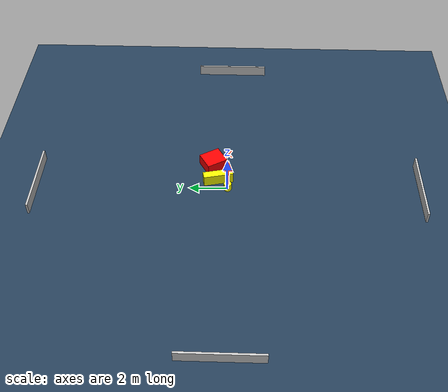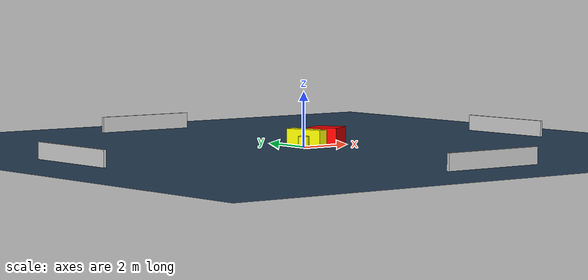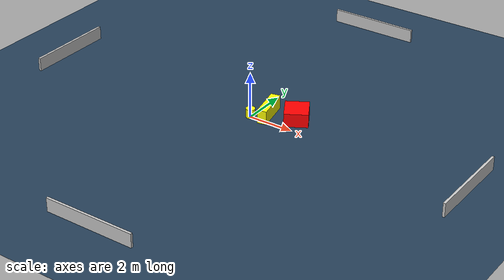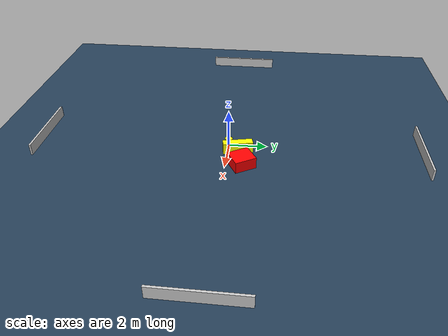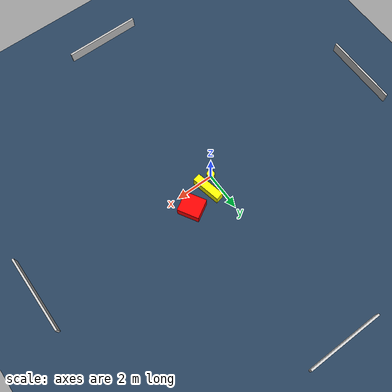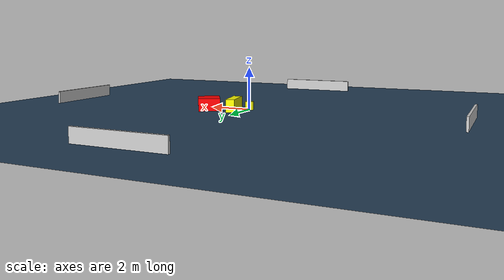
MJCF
<?xml version="1.0" ?>
<mujoco model="generated_environment">
  <option timestep="0.01" integrator="RK4" cone="elliptic"/>
  <default>
    <geom density="1"/>
  </default>
  <asset>
    <texture builtin="gradient" height="3072" name="skybox" rgb1="0.3 0.5 0.7" rgb2="0 0 0" type="skybox" width="512"/>
    <texture builtin="checker" height="300" name="groundplane" rgb1="0.2 0.3 0.4" rgb2="0.1 0.2 0.3" type="2d" width="300"/>
    <material name="groundplane" reflectance="0.2" texrepeat="5 5" texture="groundplane"/>
  </asset>
  <worldbody>
    <light dir="0 0 -1" directional="true" pos="0 0 1.5"/>
    <geom condim="3" friction="0.5 0.005 0.001" material="groundplane" name="floor" pos="0 0 0" size="0 0 0.05" type="plane"/>
    <body name="walls">
      <geom name="wall_1" condim="4" pos="-10.0 0.0 0.3" rgba="0.800000011920929 0.800000011920929 0.800000011920929 1.0" size="0.05 2.0 0.3" type="box"/>
      <geom name="wall_2" condim="4" pos="10.0 0.0 0.3" rgba="0.800000011920929 0.800000011920929 0.800000011920929 1.0" size="0.05 2.0 0.3" type="box"/>
      <geom name="wall_3" condim="4" pos="0.0 -10.0 0.3" rgba="0.800000011920929 0.800000011920929 0.800000011920929 1.0" size="2.0 0.05 0.3" type="box"/>
      <geom name="wall_4" condim="4" pos="0.0 10.0 0.3" rgba="0.800000011920929 0.800000011920929 0.800000011920929 1.0" size="2.0 0.05 0.3" type="box"/>
    </body>
    <body name="robot">
      <joint name="joint_x" type="slide" pos="0 0 0" axis="1 0 0"/>
      <joint name="joint_y" type="slide" pos="0 0 0" axis="0 1 0"/>
      <geom name="robot" type="cylinder" pos="0.0 0.0 0.2" size="0.2 0.2 0.0" mass="5.0" friction="1.0 0.005 0.0001" condim="4" rgba="1.0 1.0 0.0 1.0"/>
    </body>
    <body name="obstacle_1_movable">
      <geom name="obstacle_1_movable" condim="4" pos="0.5535941100396322 0.524428142484516 0.3" euler="0 0 102.42220666215411" friction="0.0 0.005 0.001" rgba="1.0 1.0 0.0 1.0" size="0.7717612454797327 0.206151750853897 0.3" type="box" mass="0.1"/>
      <joint type="free"/>
    </body>
    <body name="obstacle_2_static">
      <geom name="obstacle_2_static" condim="4" pos="1.738454629913278 0.8222026785312666 0.3" euler="0 0 300.45622613976684" friction="0.0 0.005 0.001" rgba="1.0 0.0 0.0 1.0" size="0.5632918409668772 0.5107095658966057 0.3" type="box"/>
    </body>
  </worldbody>
  <actuator>
    <motor name="actuator_x" joint="joint_x" gear="1" ctrlrange="-1 1"/>
    <motor name="actuator_y" joint="joint_y" gear="1" ctrlrange="-1 1"/>
  </actuator>
</mujoco>
